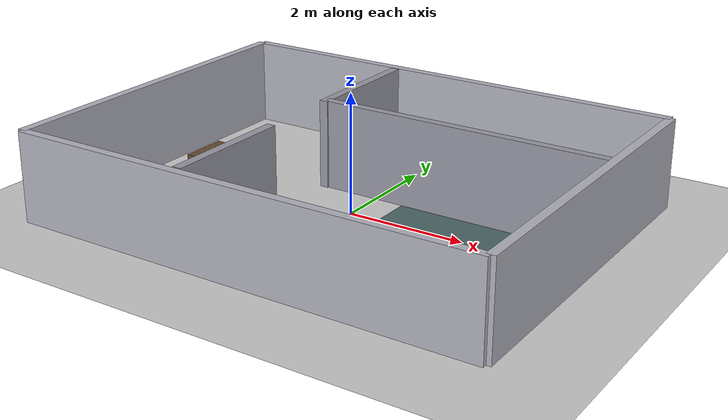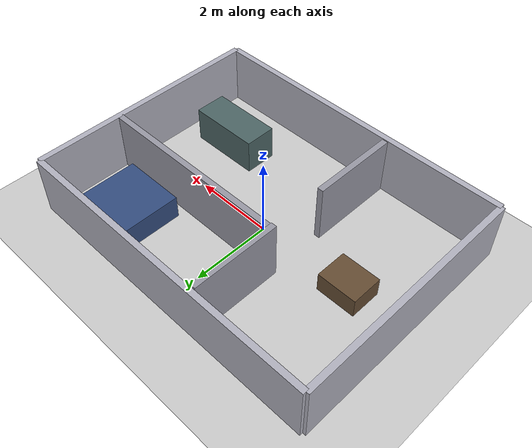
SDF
<?xml version="1.0" ?>
<sdf version="1.8">
  <world name="home_arena">

    <!-- Physics & Simulation Timing                -->
    <physics name="1ms" type="dart">
      <max_step_size>0.001</max_step_size>
      <real_time_factor>1.0</real_time_factor>
    </physics>

    <!-- Essential Gazebo Plugins                   -->
    <plugin filename="gz-sim-physics-system" name="gz::sim::systems::Physics"/>
    <plugin filename="gz-sim-user-commands-system" name="gz::sim::systems::UserCommands"/>
    <plugin filename="gz-sim-scene-broadcaster-system" name="gz::sim::systems::SceneBroadcaster"/>
    <plugin filename="gz-sim-sensors-system" name="gz::sim::systems::Sensors">
      <render_engine>ogre2</render_engine>
    </plugin>
    <plugin filename="gz-sim-imu-system" name="gz::sim::systems::Imu"/>

    <!-- Sunlight & Ambient Lighting                -->
    <light type="directional" name="sun">
      <cast_shadows>true</cast_shadows>
      <pose>0 0 10 0 0 0</pose>
      <diffuse>0.8 0.8 0.8 1</diffuse>
      <specular>0.2 0.2 0.2 1</specular>
      <direction>-0.5 0.1 -0.9</direction>
    </light>

    <!-- Ground Plane                               -->
    <model name="ground_plane">
      <static>true</static>
      <link name="link">
        <collision name="collision">
          <geometry>
            <plane>
              <normal>0 0 1</normal>
              <size>20 20</size>
            </plane>
          </geometry>
        </collision>
        <visual name="visual">
          <geometry>
            <plane>
              <normal>0 0 1</normal>
              <size>20 20</size>
            </plane>
          </geometry>
          <material>
            <ambient>0.8 0.8 0.8 1</ambient>
            <diffuse>0.8 0.8 0.8 1</diffuse>
            <specular>0.8 0.8 0.8 1</specular>
          </material>
        </visual>
      </link>
    </model>

    <!-- Multi-Room Home Arena Walls                -->
    <!-- Bounding: 8m x 6m                          -->
    <model name="house_walls">
      <static>true</static>
      <pose>0 0 0 0 0 0</pose>

      <!-- Outer North Wall (8m) -->
      <link name="north_wall">
        <pose>0 3 0.75 0 0 0</pose>
        <collision name="col">
          <geometry><box><size>8 0.15 1.5</size></box></geometry>
        </collision>
        <visual name="vis">
          <geometry><box><size>8 0.15 1.5</size></box></geometry>
          <material><ambient>0.7 0.7 0.75 1</ambient><diffuse>0.7 0.7 0.75 1</diffuse></material>
        </visual>
      </link>

      <!-- Outer South Wall (8m) -->
      <link name="south_wall">
        <pose>0 -3 0.75 0 0 0</pose>
        <collision name="col">
          <geometry><box><size>8 0.15 1.5</size></box></geometry>
        </collision>
        <visual name="vis">
          <geometry><box><size>8 0.15 1.5</size></box></geometry>
          <material><ambient>0.7 0.7 0.75 1</ambient><diffuse>0.7 0.7 0.75 1</diffuse></material>
        </visual>
      </link>

      <!-- Outer East Wall (6m) -->
      <link name="east_wall">
        <pose>4 0 0.75 0 0 0</pose>
        <collision name="col">
          <geometry><box><size>0.15 6 1.5</size></box></geometry>
        </collision>
        <visual name="vis">
          <geometry><box><size>0.15 6 1.5</size></box></geometry>
          <material><ambient>0.7 0.7 0.75 1</ambient><diffuse>0.7 0.7 0.75 1</diffuse></material>
        </visual>
      </link>

      <!-- Outer West Wall (6m) -->
      <link name="west_wall">
        <pose>-4 0 0.75 0 0 0</pose>
        <collision name="col">
          <geometry><box><size>0.15 6 1.5</size></box></geometry>
        </collision>
        <visual name="vis">
          <geometry><box><size>0.15 6 1.5</size></box></geometry>
          <material><ambient>0.7 0.7 0.75 1</ambient><diffuse>0.7 0.7 0.75 1</diffuse></material>
        </visual>
      </link>

      <!-- Interior Divider Wall 1 (Dividing Kitchen & Living Room with 1m Doorway) -->
      <link name="divider_wall_1_a">
        <pose>-1 1.8 0.75 0 0 0</pose>
        <collision name="col">
          <geometry><box><size>0.15 2.2 1.5</size></box></geometry>
        </collision>
        <visual name="vis">
          <geometry><box><size>0.15 2.2 1.5</size></box></geometry>
          <material><ambient>0.6 0.6 0.65 1</ambient><diffuse>0.6 0.6 0.65 1</diffuse></material>
        </visual>
      </link>

      <link name="divider_wall_1_b">
        <pose>-1 -1.8 0.75 0 0 0</pose>
        <collision name="col">
          <geometry><box><size>0.15 2.2 1.5</size></box></geometry>
        </collision>
        <visual name="vis">
          <geometry><box><size>0.15 2.2 1.5</size></box></geometry>
          <material><ambient>0.6 0.6 0.65 1</ambient><diffuse>0.6 0.6 0.65 1</diffuse></material>
        </visual>
      </link>

      <!-- Interior Divider Wall 2 (Dividing Bedroom with 1m Doorway) -->
      <link name="divider_wall_2">
        <pose>1.5 0.8 0.75 0 0 0</pose>
        <collision name="col">
          <geometry><box><size>5 0.15 1.5</size></box></geometry>
        </collision>
        <visual name="vis">
          <geometry><box><size>5 0.15 1.5</size></box></geometry>
          <material><ambient>0.6 0.6 0.65 1</ambient><diffuse>0.6 0.6 0.65 1</diffuse></material>
        </visual>
      </link>
    </model>

    <!-- Furniture Obstacles                        -->
    <!-- Coffee Table in Living Room -->
    <model name="table_living_room">
      <static>true</static>
      <pose>-2.5 0 0.25 0 0 0</pose>
      <link name="link">
        <collision name="col">
          <geometry><box><size>1.0 0.8 0.5</size></box></geometry>
        </collision>
        <visual name="vis">
          <geometry><box><size>1.0 0.8 0.5</size></box></geometry>
          <material><ambient>0.4 0.3 0.2 1</ambient><diffuse>0.4 0.3 0.2 1</diffuse></material>
        </visual>
      </link>
    </model>

    <!-- Kitchen Island in Kitchen Area -->
    <model name="kitchen_counter">
      <static>true</static>
      <pose>2.5 -1.5 0.45 0 0 0</pose>
      <link name="link">
        <collision name="col">
          <geometry><box><size>1.8 0.8 0.9</size></box></geometry>
        </collision>
        <visual name="vis">
          <geometry><box><size>1.8 0.8 0.9</size></box></geometry>
          <material><ambient>0.3 0.4 0.4 1</ambient><diffuse>0.3 0.4 0.4 1</diffuse></material>
        </visual>
      </link>
    </model>

    <!-- Bedroom Bed -->
    <model name="bed">
      <static>true</static>
      <pose>2.5 2.0 0.3 0 0 0</pose>
      <link name="link">
        <collision name="col">
          <geometry><box><size>1.6 1.8 0.6</size></box></geometry>
        </collision>
        <visual name="vis">
          <geometry><box><size>1.6 1.8 0.6</size></box></geometry>
          <material><ambient>0.2 0.3 0.5 1</ambient><diffuse>0.2 0.3 0.5 1</diffuse></material>
        </visual>
      </link>
    </model>

  </world>
</sdf>
